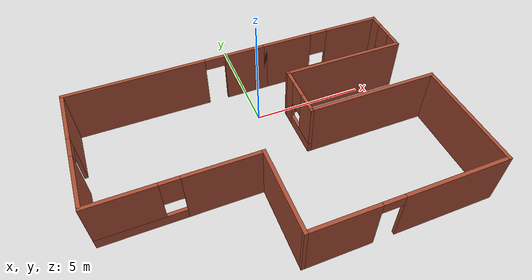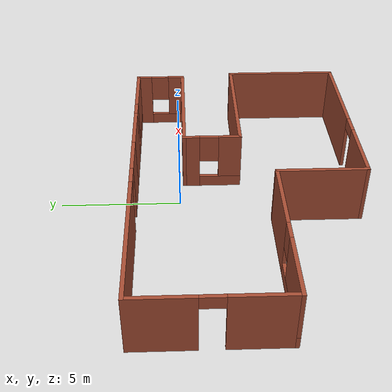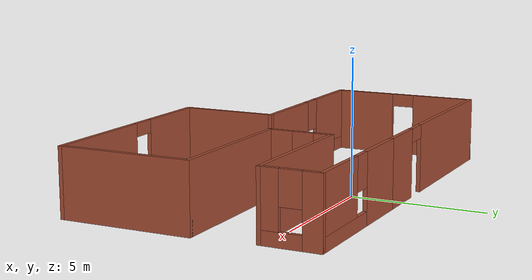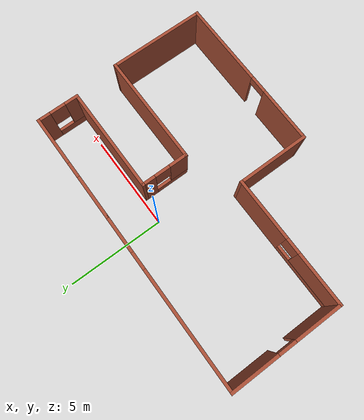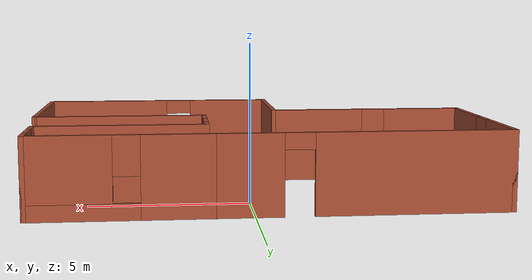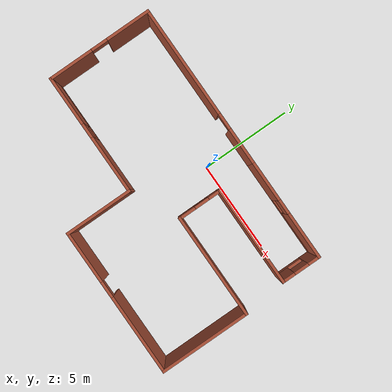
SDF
<?xml version='1.0'?>
<sdf version='1.6'>
  <model name='turtle_world'>
    <pose frame=''>-0.430981 -2.76962 0 0 -0 0</pose>
    <link name='Wall_1'>
      <pose frame=''>-7.35 1.85 0 0 -0 1.5708</pose>
      <visual name='Wall_1_Visual_0'>
        <pose frame=''>-1.68904 0 1.25 0 -0 0</pose>
        <geometry>
          <box>
            <size>2.37192 0.15 2.5</size>
          </box>
        </geometry>
        <material>
          <script>
            <uri>file://media/materials/scripts/gazebo.material</uri>
            <name>Gazebo/Bricks</name>
          </script>
          <ambient>1 1 1 1</ambient>
        </material>
        <meta>
          <layer>0</layer>
        </meta>
      </visual>
      <collision name='Wall_1_Collision_0'>
        <geometry>
          <box>
            <size>2.37192 0.15 2.5</size>
          </box>
        </geometry>
        <pose frame=''>-1.68904 0 1.25 0 -0 0</pose>
      </collision>
      <visual name='Wall_1_Visual_1'>
        <pose frame=''>1.63596 0 1.25 0 -0 0</pose>
        <geometry>
          <box>
            <size>2.47808 0.15 2.5</size>
          </box>
        </geometry>
        <material>
          <script>
            <uri>file://media/materials/scripts/gazebo.material</uri>
            <name>Gazebo/Bricks</name>
          </script>
          <ambient>1 1 1 1</ambient>
        </material>
        <meta>
          <layer>0</layer>
        </meta>
      </visual>
      <collision name='Wall_1_Collision_1'>
        <geometry>
          <box>
            <size>2.47808 0.15 2.5</size>
          </box>
        </geometry>
        <pose frame=''>1.63596 0 1.25 0 -0 0</pose>
      </collision>
      <visual name='Wall_1_Visual_2'>
        <pose frame=''>-0.053078 0 2.25 0 -0 0</pose>
        <geometry>
          <box>
            <size>0.9 0.15 0.5</size>
          </box>
        </geometry>
        <material>
          <script>
            <uri>file://media/materials/scripts/gazebo.material</uri>
            <name>Gazebo/Bricks</name>
          </script>
          <ambient>1 1 1 1</ambient>
        </material>
        <meta>
          <layer>0</layer>
        </meta>
      </visual>
      <collision name='Wall_1_Collision_2'>
        <geometry>
          <box>
            <size>0.9 0.15 0.5</size>
          </box>
        </geometry>
        <pose frame=''>-0.053078 0 2.25 0 -0 0</pose>
      </collision>
    </link>
    <link name='Wall_10'>
      <collision name='Wall_10_Collision'>
        <geometry>
          <box>
            <size>3.75 0.15 2.5</size>
          </box>
        </geometry>
        <pose frame=''>0 0 1.25 0 -0 0</pose>
      </collision>
      <visual name='Wall_10_Visual'>
        <pose frame=''>0 0 1.25 0 -0 0</pose>
        <geometry>
          <box>
            <size>3.75 0.15 2.5</size>
          </box>
        </geometry>
        <material>
          <script>
            <uri>file://media/materials/scripts/gazebo.material</uri>
            <name>Gazebo/Bricks</name>
          </script>
          <ambient>1 1 1 1</ambient>
        </material>
        <meta>
          <layer>0</layer>
        </meta>
      </visual>
      <pose frame=''>-0.75 -2.85 0 0 -0 1.5708</pose>
    </link>
    <link name='Wall_11'>
      <pose frame=''>-4.05 -1.05 0 0 -0 3.14159</pose>
      <visual name='Wall_11_Visual_0'>
        <pose frame=''>-1.76613 0 1.25 0 -0 0</pose>
        <geometry>
          <box>
            <size>3.21774 0.15 2.5</size>
          </box>
        </geometry>
        <material>
          <script>
            <uri>file://media/materials/scripts/gazebo.material</uri>
            <name>Gazebo/Bricks</name>
          </script>
          <ambient>1 1 1 1</ambient>
        </material>
        <meta>
          <layer>0</layer>
        </meta>
      </visual>
      <collision name='Wall_11_Collision_0'>
        <geometry>
          <box>
            <size>3.21774 0.15 2.5</size>
          </box>
        </geometry>
        <pose frame=''>-1.76613 0 1.25 0 -0 0</pose>
      </collision>
      <visual name='Wall_11_Visual_1'>
        <pose frame=''>1.60887 0 0.25 0 -0 0</pose>
        <geometry>
          <box>
            <size>3.53226 0.15 0.5</size>
          </box>
        </geometry>
        <material>
          <script>
            <uri>file://media/materials/scripts/gazebo.material</uri>
            <name>Gazebo/Bricks</name>
          </script>
          <ambient>1 1 1 1</ambient>
        </material>
        <meta>
          <layer>0</layer>
        </meta>
      </visual>
      <collision name='Wall_11_Collision_1'>
        <geometry>
          <box>
            <size>3.53226 0.15 0.5</size>
          </box>
        </geometry>
        <pose frame=''>1.60887 0 0.25 0 -0 0</pose>
      </collision>
      <visual name='Wall_11_Visual_2'>
        <pose frame=''>2.00887 0 1.5 0 -0 0</pose>
        <geometry>
          <box>
            <size>2.73226 0.15 2</size>
          </box>
        </geometry>
        <material>
          <script>
            <uri>file://media/materials/scripts/gazebo.material</uri>
            <name>Gazebo/Bricks</name>
          </script>
          <ambient>1 1 1 1</ambient>
        </material>
        <meta>
          <layer>0</layer>
        </meta>
      </visual>
      <collision name='Wall_11_Collision_2'>
        <geometry>
          <box>
            <size>2.73226 0.15 2</size>
          </box>
        </geometry>
        <pose frame=''>2.00887 0 1.5 0 -0 0</pose>
      </collision>
      <visual name='Wall_11_Visual_3'>
        <pose frame=''>0.242737 0 1.9 0 -0 0</pose>
        <geometry>
          <box>
            <size>0.8 0.15 1.2</size>
          </box>
        </geometry>
        <material>
          <script>
            <uri>file://media/materials/scripts/gazebo.material</uri>
            <name>Gazebo/Bricks</name>
          </script>
          <ambient>1 1 1 1</ambient>
        </material>
        <meta>
          <layer>0</layer>
        </meta>
      </visual>
      <collision name='Wall_11_Collision_3'>
        <geometry>
          <box>
            <size>0.8 0.15 1.2</size>
          </box>
        </geometry>
        <pose frame=''>0.242737 0 1.9 0 -0 0</pose>
      </collision>
    </link>
    <link name='Wall_2'>
      <pose frame=''>-2.925 4.65 0 0 -0 0</pose>
      <visual name='Wall_2_Visual_0'>
        <pose frame=''>-1.44921 0 1.25 0 -0 0</pose>
        <geometry>
          <box>
            <size>6.10157 0.15 2.5</size>
          </box>
        </geometry>
        <material>
          <script>
            <uri>file://media/materials/scripts/gazebo.material</uri>
            <name>Gazebo/Bricks</name>
          </script>
          <ambient>1 1 1 1</ambient>
        </material>
        <meta>
          <layer>0</layer>
        </meta>
      </visual>
      <collision name='Wall_2_Collision_0'>
        <geometry>
          <box>
            <size>6.10157 0.15 2.5</size>
          </box>
        </geometry>
        <pose frame=''>-1.44921 0 1.25 0 -0 0</pose>
      </collision>
      <visual name='Wall_2_Visual_1'>
        <pose frame=''>3.50079 0 1.25 0 -0 0</pose>
        <geometry>
          <box>
            <size>1.99843 0.15 2.5</size>
          </box>
        </geometry>
        <material>
          <script>
            <uri>file://media/materials/scripts/gazebo.material</uri>
            <name>Gazebo/Bricks</name>
          </script>
          <ambient>1 1 1 1</ambient>
        </material>
        <meta>
          <layer>0</layer>
        </meta>
      </visual>
      <collision name='Wall_2_Collision_1'>
        <geometry>
          <box>
            <size>1.99843 0.15 2.5</size>
          </box>
        </geometry>
        <pose frame=''>3.50079 0 1.25 0 -0 0</pose>
      </collision>
      <visual name='Wall_2_Visual_2'>
        <pose frame=''>2.05157 0 2.25 0 -0 0</pose>
        <geometry>
          <box>
            <size>0.9 0.15 0.5</size>
          </box>
        </geometry>
        <material>
          <script>
            <uri>file://media/materials/scripts/gazebo.material</uri>
            <name>Gazebo/Bricks</name>
          </script>
          <ambient>1 1 1 1</ambient>
        </material>
        <meta>
          <layer>0</layer>
        </meta>
      </visual>
      <collision name='Wall_2_Collision_2'>
        <geometry>
          <box>
            <size>0.9 0.15 0.5</size>
          </box>
        </geometry>
        <pose frame=''>2.05157 0 2.25 0 -0 0</pose>
      </collision>
    </link>
    <link name='Wall_3'>
      <pose frame=''>4.3 4.65 0 0 -0 0</pose>
      <visual name='Wall_3_Visual_0'>
        <pose frame=''>-1.71002 0 1.25 0 -0 0</pose>
        <geometry>
          <box>
            <size>2.32996 0.15 2.5</size>
          </box>
        </geometry>
        <material>
          <script>
            <uri>file://media/materials/scripts/gazebo.material</uri>
            <name>Gazebo/Bricks</name>
          </script>
          <ambient>1 1 1 1</ambient>
        </material>
        <meta>
          <layer>0</layer>
        </meta>
      </visual>
      <collision name='Wall_3_Collision_0'>
        <geometry>
          <box>
            <size>2.32996 0.15 2.5</size>
          </box>
        </geometry>
        <pose frame=''>-1.71002 0 1.25 0 -0 0</pose>
      </collision>
      <visual name='Wall_3_Visual_1'>
        <pose frame=''>1.16498 0 0.25 0 -0 0</pose>
        <geometry>
          <box>
            <size>3.42004 0.15 0.5</size>
          </box>
        </geometry>
        <material>
          <script>
            <uri>file://media/materials/scripts/gazebo.material</uri>
            <name>Gazebo/Bricks</name>
          </script>
          <ambient>1 1 1 1</ambient>
        </material>
        <meta>
          <layer>0</layer>
        </meta>
      </visual>
      <collision name='Wall_3_Collision_1'>
        <geometry>
          <box>
            <size>3.42004 0.15 0.5</size>
          </box>
        </geometry>
        <pose frame=''>1.16498 0 0.25 0 -0 0</pose>
      </collision>
      <visual name='Wall_3_Visual_2'>
        <pose frame=''>1.56498 0 1.5 0 -0 0</pose>
        <geometry>
          <box>
            <size>2.62004 0.15 2</size>
          </box>
        </geometry>
        <material>
          <script>
            <uri>file://media/materials/scripts/gazebo.material</uri>
            <name>Gazebo/Bricks</name>
          </script>
          <ambient>1 1 1 1</ambient>
        </material>
        <meta>
          <layer>0</layer>
        </meta>
      </visual>
      <collision name='Wall_3_Collision_2'>
        <geometry>
          <box>
            <size>2.62004 0.15 2</size>
          </box>
        </geometry>
        <pose frame=''>1.56498 0 1.5 0 -0 0</pose>
      </collision>
      <visual name='Wall_3_Visual_3'>
        <pose frame=''>-0.145037 0 1.9 0 -0 0</pose>
        <geometry>
          <box>
            <size>0.8 0.15 1.2</size>
          </box>
        </geometry>
        <material>
          <script>
            <uri>file://media/materials/scripts/gazebo.material</uri>
            <name>Gazebo/Bricks</name>
          </script>
          <ambient>1 1 1 1</ambient>
        </material>
        <meta>
          <layer>0</layer>
        </meta>
      </visual>
      <collision name='Wall_3_Collision_3'>
        <geometry>
          <box>
            <size>0.8 0.15 1.2</size>
          </box>
        </geometry>
        <pose frame=''>-0.145037 0 1.9 0 -0 0</pose>
      </collision>
    </link>
    <link name='Wall_4'>
      <pose frame=''>7.1 3.6 0 0 -0 -1.5708</pose>
      <visual name='Wall_4_Visual_0'>
        <pose frame=''>-0.776129 0 1.25 0 -0 0</pose>
        <geometry>
          <box>
            <size>0.697743 0.15 2.5</size>
          </box>
        </geometry>
        <material>
          <script>
            <uri>file://media/materials/scripts/gazebo.material</uri>
            <name>Gazebo/Bricks</name>
          </script>
          <ambient>1 1 1 1</ambient>
        </material>
        <meta>
          <layer>0</layer>
        </meta>
      </visual>
      <collision name='Wall_4_Collision_0'>
        <geometry>
          <box>
            <size>0.697743 0.15 2.5</size>
          </box>
        </geometry>
        <pose frame=''>-0.776129 0 1.25 0 -0 0</pose>
      </collision>
      <visual name='Wall_4_Visual_1'>
        <pose frame=''>0.348871 0 0.25 0 -0 0</pose>
        <geometry>
          <box>
            <size>1.55226 0.15 0.5</size>
          </box>
        </geometry>
        <material>
          <script>
            <uri>file://media/materials/scripts/gazebo.material</uri>
            <name>Gazebo/Bricks</name>
          </script>
          <ambient>1 1 1 1</ambient>
        </material>
        <meta>
          <layer>0</layer>
        </meta>
      </visual>
      <collision name='Wall_4_Collision_1'>
        <geometry>
          <box>
            <size>1.55226 0.15 0.5</size>
          </box>
        </geometry>
        <pose frame=''>0.348871 0 0.25 0 -0 0</pose>
      </collision>
      <visual name='Wall_4_Visual_2'>
        <pose frame=''>0.748871 0 1.5 0 -0 0</pose>
        <geometry>
          <box>
            <size>0.752257 0.15 2</size>
          </box>
        </geometry>
        <material>
          <script>
            <uri>file://media/materials/scripts/gazebo.material</uri>
            <name>Gazebo/Bricks</name>
          </script>
          <ambient>1 1 1 1</ambient>
        </material>
        <meta>
          <layer>0</layer>
        </meta>
      </visual>
      <collision name='Wall_4_Collision_2'>
        <geometry>
          <box>
            <size>0.752257 0.15 2</size>
          </box>
        </geometry>
        <pose frame=''>0.748871 0 1.5 0 -0 0</pose>
      </collision>
      <visual name='Wall_4_Visual_3'>
        <pose frame=''>-0.027257 0 1.9 0 -0 0</pose>
        <geometry>
          <box>
            <size>0.8 0.15 1.2</size>
          </box>
        </geometry>
        <material>
          <script>
            <uri>file://media/materials/scripts/gazebo.material</uri>
            <name>Gazebo/Bricks</name>
          </script>
          <ambient>1 1 1 1</ambient>
        </material>
        <meta>
          <layer>0</layer>
        </meta>
      </visual>
      <collision name='Wall_4_Collision_3'>
        <geometry>
          <box>
            <size>0.8 0.15 1.2</size>
          </box>
        </geometry>
        <pose frame=''>-0.027257 0 1.9 0 -0 0</pose>
      </collision>
    </link>
    <link name='Wall_5'>
      <collision name='Wall_5_Collision'>
        <geometry>
          <box>
            <size>5.5 0.15 2.5</size>
          </box>
        </geometry>
        <pose frame=''>0 0 1.25 0 -0 0</pose>
      </collision>
      <visual name='Wall_5_Visual'>
        <pose frame=''>0 0 1.25 0 -0 0</pose>
        <geometry>
          <box>
            <size>5.5 0.15 2.5</size>
          </box>
        </geometry>
        <material>
          <script>
            <uri>file://media/materials/scripts/gazebo.material</uri>
            <name>Gazebo/Bricks</name>
          </script>
          <ambient>1 1 1 1</ambient>
        </material>
        <meta>
          <layer>0</layer>
        </meta>
      </visual>
      <pose frame=''>4.425 2.55 0 0 -0 3.14159</pose>
    </link>
    <link name='Wall_6'>
      <pose frame=''>1.75 1.375 0 0 -0 -1.5708</pose>
      <visual name='Wall_6_Visual_0'>
        <pose frame=''>-0.885109 0 1.25 0 -0 0</pose>
        <geometry>
          <box>
            <size>0.729781 0.15 2.5</size>
          </box>
        </geometry>
        <material>
          <script>
            <uri>file://media/materials/scripts/gazebo.material</uri>
            <name>Gazebo/Bricks</name>
          </script>
          <ambient>1 1 1 1</ambient>
        </material>
        <meta>
          <layer>0</layer>
        </meta>
      </visual>
      <collision name='Wall_6_Collision_0'>
        <geometry>
          <box>
            <size>0.729781 0.15 2.5</size>
          </box>
        </geometry>
        <pose frame=''>-0.885109 0 1.25 0 -0 0</pose>
      </collision>
      <visual name='Wall_6_Visual_1'>
        <pose frame=''>0.364891 0 0.25 0 -0 0</pose>
        <geometry>
          <box>
            <size>1.77022 0.15 0.5</size>
          </box>
        </geometry>
        <material>
          <script>
            <uri>file://media/materials/scripts/gazebo.material</uri>
            <name>Gazebo/Bricks</name>
          </script>
          <ambient>1 1 1 1</ambient>
        </material>
        <meta>
          <layer>0</layer>
        </meta>
      </visual>
      <collision name='Wall_6_Collision_1'>
        <geometry>
          <box>
            <size>1.77022 0.15 0.5</size>
          </box>
        </geometry>
        <pose frame=''>0.364891 0 0.25 0 -0 0</pose>
      </collision>
      <visual name='Wall_6_Visual_2'>
        <pose frame=''>0.764891 0 1.5 0 -0 0</pose>
        <geometry>
          <box>
            <size>0.970219 0.15 2</size>
          </box>
        </geometry>
        <material>
          <script>
            <uri>file://media/materials/scripts/gazebo.material</uri>
            <name>Gazebo/Bricks</name>
          </script>
          <ambient>1 1 1 1</ambient>
        </material>
        <meta>
          <layer>0</layer>
        </meta>
      </visual>
      <collision name='Wall_6_Collision_2'>
        <geometry>
          <box>
            <size>0.970219 0.15 2</size>
          </box>
        </geometry>
        <pose frame=''>0.764891 0 1.5 0 -0 0</pose>
      </collision>
      <visual name='Wall_6_Visual_3'>
        <pose frame=''>-0.120219 0 1.9 0 -0 0</pose>
        <geometry>
          <box>
            <size>0.8 0.15 1.2</size>
          </box>
        </geometry>
        <material>
          <script>
            <uri>file://media/materials/scripts/gazebo.material</uri>
            <name>Gazebo/Bricks</name>
          </script>
          <ambient>1 1 1 1</ambient>
        </material>
        <meta>
          <layer>0</layer>
        </meta>
      </visual>
      <collision name='Wall_6_Collision_3'>
        <geometry>
          <box>
            <size>0.8 0.15 1.2</size>
          </box>
        </geometry>
        <pose frame=''>-0.120219 0 1.9 0 -0 0</pose>
      </collision>
    </link>
    <link name='Wall_7'>
      <collision name='Wall_7_Collision'>
        <geometry>
          <box>
            <size>5.75 0.15 2.5</size>
          </box>
        </geometry>
        <pose frame=''>0 0 1.25 0 -0 0</pose>
      </collision>
      <visual name='Wall_7_Visual'>
        <pose frame=''>0 0 1.25 0 -0 0</pose>
        <geometry>
          <box>
            <size>5.75 0.15 2.5</size>
          </box>
        </geometry>
        <material>
          <script>
            <uri>file://media/materials/scripts/gazebo.material</uri>
            <name>Gazebo/Bricks</name>
          </script>
          <ambient>1 1 1 1</ambient>
        </material>
        <meta>
          <layer>0</layer>
        </meta>
      </visual>
      <pose frame=''>4.55 0.2 0 0 -0 0</pose>
    </link>
    <link name='Wall_8'>
      <collision name='Wall_8_Collision'>
        <geometry>
          <box>
            <size>5 0.15 2.5</size>
          </box>
        </geometry>
        <pose frame=''>0 0 1.25 0 -0 0</pose>
      </collision>
      <visual name='Wall_8_Visual'>
        <pose frame=''>0 0 1.25 0 -0 0</pose>
        <geometry>
          <box>
            <size>5 0.15 2.5</size>
          </box>
        </geometry>
        <material>
          <script>
            <uri>file://media/materials/scripts/gazebo.material</uri>
            <name>Gazebo/Bricks</name>
          </script>
          <ambient>1 1 1 1</ambient>
        </material>
        <meta>
          <layer>0</layer>
        </meta>
      </visual>
      <pose frame=''>7.35 -2.225 0 0 -0 -1.5708</pose>
    </link>
    <link name='Wall_9'>
      <pose frame=''>3.3 -4.65 0 0 -0 3.14159</pose>
      <visual name='Wall_9_Visual_0'>
        <pose frame=''>-1.91044 0 1.25 0 -0 0</pose>
        <geometry>
          <box>
            <size>4.42912 0.15 2.5</size>
          </box>
        </geometry>
        <material>
          <script>
            <uri>file://media/materials/scripts/gazebo.material</uri>
            <name>Gazebo/Bricks</name>
          </script>
          <ambient>1 1 1 1</ambient>
        </material>
        <meta>
          <layer>0</layer>
        </meta>
      </visual>
      <collision name='Wall_9_Collision_0'>
        <geometry>
          <box>
            <size>4.42912 0.15 2.5</size>
          </box>
        </geometry>
        <pose frame=''>-1.91044 0 1.25 0 -0 0</pose>
      </collision>
      <visual name='Wall_9_Visual_1'>
        <pose frame=''>2.66456 0 1.25 0 -0 0</pose>
        <geometry>
          <box>
            <size>2.92088 0.15 2.5</size>
          </box>
        </geometry>
        <material>
          <script>
            <uri>file://media/materials/scripts/gazebo.material</uri>
            <name>Gazebo/Bricks</name>
          </script>
          <ambient>1 1 1 1</ambient>
        </material>
        <meta>
          <layer>0</layer>
        </meta>
      </visual>
      <collision name='Wall_9_Collision_1'>
        <geometry>
          <box>
            <size>2.92088 0.15 2.5</size>
          </box>
        </geometry>
        <pose frame=''>2.66456 0 1.25 0 -0 0</pose>
      </collision>
      <visual name='Wall_9_Visual_2'>
        <pose frame=''>0.754123 0 2.25 0 -0 0</pose>
        <geometry>
          <box>
            <size>0.9 0.15 0.5</size>
          </box>
        </geometry>
        <material>
          <script>
            <uri>file://media/materials/scripts/gazebo.material</uri>
            <name>Gazebo/Bricks</name>
          </script>
          <ambient>1 1 1 1</ambient>
        </material>
        <meta>
          <layer>0</layer>
        </meta>
      </visual>
      <collision name='Wall_9_Collision_2'>
        <geometry>
          <box>
            <size>0.9 0.15 0.5</size>
          </box>
        </geometry>
        <pose frame=''>0.754123 0 2.25 0 -0 0</pose>
      </collision>
    </link>
    <static>1</static>
  </model>
</sdf>
